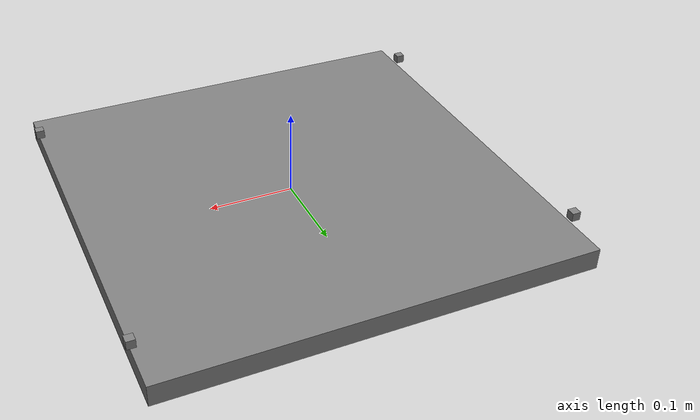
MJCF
<mujoco model="box">
  <compiler angle="radian"/>
  <worldbody>
    <geom name="base_link_collision" size="0.25 0.25 0.0125" type="box"/>
    <geom name="side1_left_dummy_link_collision" size="0.005 0.005 0.005" pos="-0.25 0.2 0.025" type="box"/>
    <geom name="side1_right_dummy_link_collision" size="0.005 0.005 0.005" pos="-0.25 -0.2 0.025" type="box"/>
    <geom name="side2_left_dummy_link_collision" size="0.005 0.005 0.005" pos="0.25 0.2 0.025" type="box"/>
    <geom name="side2_right_dummy_link_collision" size="0.005 0.005 0.005" pos="0.25 -0.2 0.025" type="box"/>
  </worldbody>
</mujoco>
